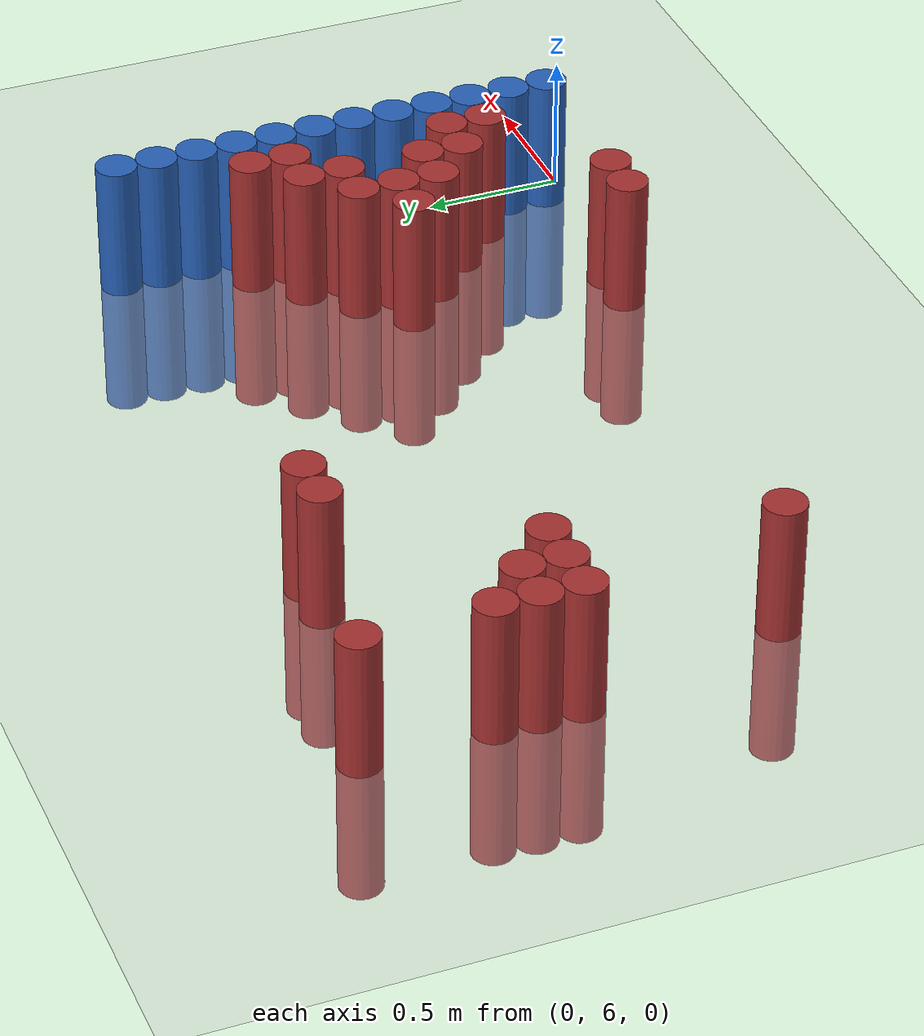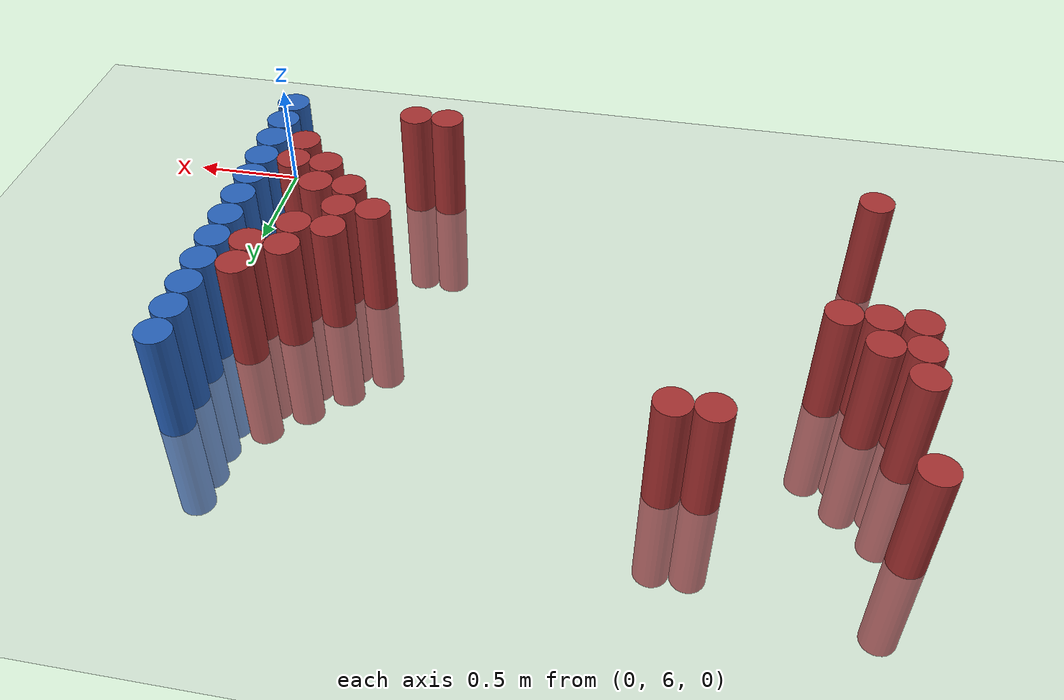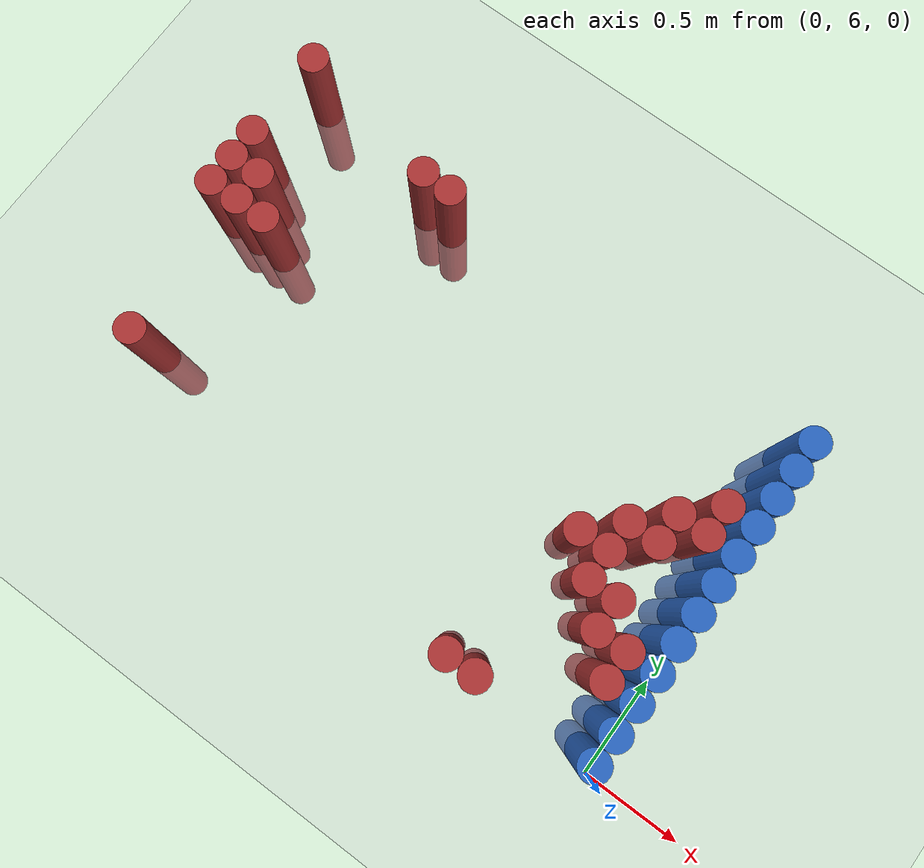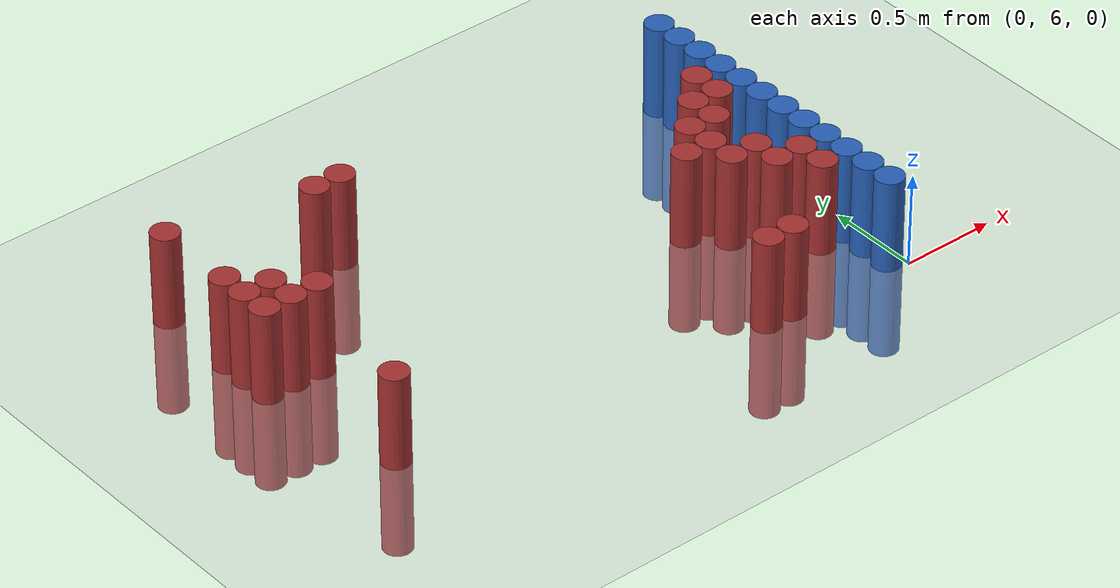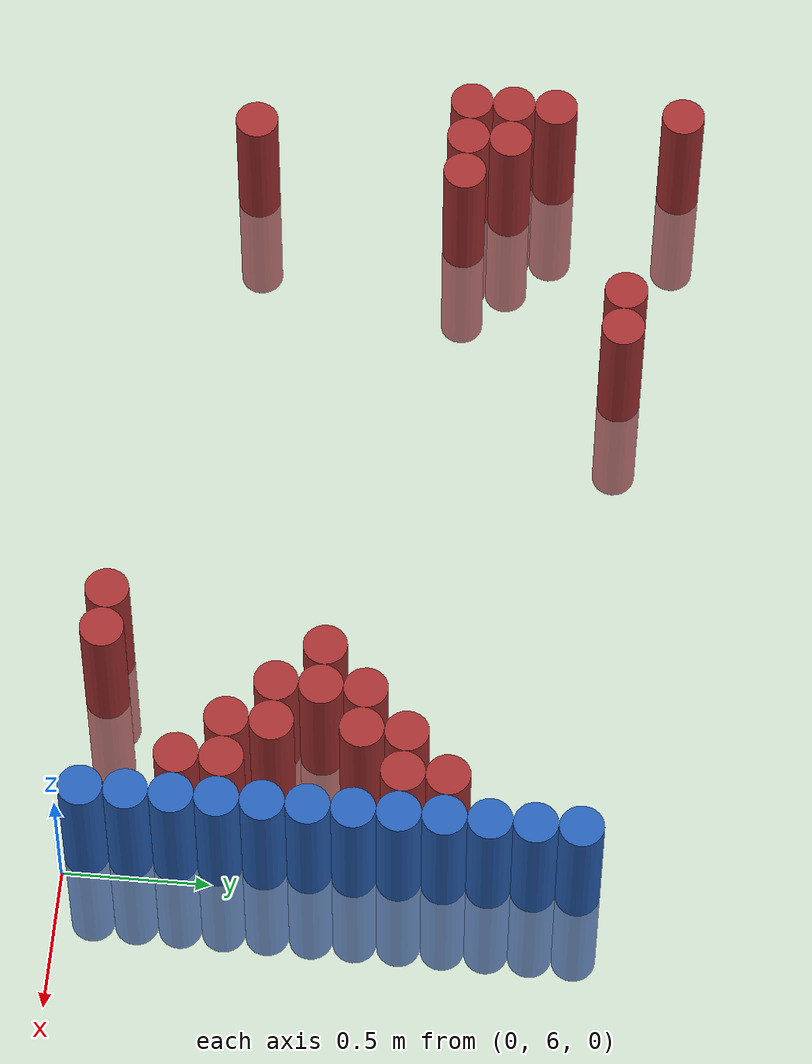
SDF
<sdf version="1.6">
 <world name="default">
  <model name="ground_plane">
   <static>1</static>
   <link name="link">
    <collision name="collision">
     <geometry><plane><normal>0 0 1</normal><size>100 100</size></plane></geometry>
     <surface><friction><ode><mu>100</mu><mu2>50</mu2></ode></friction></surface>
    </collision>
    <visual name="visual">
     <cast_shadows>0</cast_shadows>
     <geometry><plane><normal>0 0 1</normal><size>100 100</size></plane></geometry>
     <material>
      <script><uri>file://media/materials/scripts/gazebo.material</uri><name>Gazebo/Grey</name></script>
     </material>
    </visual>
   </link>
  </model>
  <model name="unit_cylinder_199">
   <static>1</static>
   <pose>-2.925000 7.125000 0.000000 0.000000 0.000000 0.000000</pose>
   <link name="link">
    <inertial>
     <mass>1</mass>
     <inertia><ixx>0.145833</ixx><ixy>0</ixy><ixz>0</ixz><iyy>0.145833</iyy><iyz>0</iyz><izz>0.125</izz></inertia>
    </inertial>
    <collision name="collision">
     <geometry><cylinder><radius>0.075000</radius><length>1</length></cylinder></geometry>
    </collision>
    <visual name="visual">
     <geometry><cylinder><radius>0.075000</radius><length>1</length></cylinder></geometry>
     <material>
      <ambient>0.648000 0.192000 0.192000 1</ambient>
      <diffuse>0.648000 0.192000 0.192000 1</diffuse>
     </material>
     <material>
      <script><name>Gazebo/Grey</name><uri>file://media/materials/scripts/gazebo.material</uri></script>
     </material>
    </visual>
    <sensor name="sensor_contact" type="contact"><contact><collision>collision</collision></contact></sensor>
   </link>
   <plugin filename="gz-sim-touchplugin-system" name="gz::sim::systems::TouchPlugin">
    <target>robot</target>
    <namespace>robot</namespace>
    <time>0.001</time>
    <enabled>true</enabled>
   </plugin>
  </model>
  <model name="unit_cylinder_200">
   <static>1</static>
   <pose>-2.925000 7.275000 0.000000 0.000000 0.000000 0.000000</pose>
   <link name="link">
    <inertial>
     <mass>1</mass>
     <inertia><ixx>0.145833</ixx><ixy>0</ixy><ixz>0</ixz><iyy>0.145833</iyy><iyz>0</iyz><izz>0.125</izz></inertia>
    </inertial>
    <collision name="collision">
     <geometry><cylinder><radius>0.075000</radius><length>1</length></cylinder></geometry>
    </collision>
    <visual name="visual">
     <geometry><cylinder><radius>0.075000</radius><length>1</length></cylinder></geometry>
     <material>
      <ambient>0.648000 0.192000 0.192000 1</ambient>
      <diffuse>0.648000 0.192000 0.192000 1</diffuse>
     </material>
     <material>
      <script><name>Gazebo/Grey</name><uri>file://media/materials/scripts/gazebo.material</uri></script>
     </material>
    </visual>
    <sensor name="sensor_contact" type="contact"><contact><collision>collision</collision></contact></sensor>
   </link>
   <plugin filename="gz-sim-touchplugin-system" name="gz::sim::systems::TouchPlugin">
    <target>robot</target>
    <namespace>robot</namespace>
    <time>0.001</time>
    <enabled>true</enabled>
   </plugin>
  </model>
  <model name="unit_cylinder_201">
   <static>1</static>
   <pose>-2.925000 7.425000 0.000000 0.000000 0.000000 0.000000</pose>
   <link name="link">
    <inertial>
     <mass>1</mass>
     <inertia><ixx>0.145833</ixx><ixy>0</ixy><ixz>0</ixz><iyy>0.145833</iyy><iyz>0</iyz><izz>0.125</izz></inertia>
    </inertial>
    <collision name="collision">
     <geometry><cylinder><radius>0.075000</radius><length>1</length></cylinder></geometry>
    </collision>
    <visual name="visual">
     <geometry><cylinder><radius>0.075000</radius><length>1</length></cylinder></geometry>
     <material>
      <ambient>0.648000 0.192000 0.192000 1</ambient>
      <diffuse>0.648000 0.192000 0.192000 1</diffuse>
     </material>
     <material>
      <script><name>Gazebo/Grey</name><uri>file://media/materials/scripts/gazebo.material</uri></script>
     </material>
    </visual>
    <sensor name="sensor_contact" type="contact"><contact><collision>collision</collision></contact></sensor>
   </link>
   <plugin filename="gz-sim-touchplugin-system" name="gz::sim::systems::TouchPlugin">
    <target>robot</target>
    <namespace>robot</namespace>
    <time>0.001</time>
    <enabled>true</enabled>
   </plugin>
  </model>
  <model name="unit_cylinder_202">
   <static>1</static>
   <pose>-2.925000 7.875000 0.000000 0.000000 0.000000 0.000000</pose>
   <link name="link">
    <inertial>
     <mass>1</mass>
     <inertia><ixx>0.145833</ixx><ixy>0</ixy><ixz>0</ixz><iyy>0.145833</iyy><iyz>0</iyz><izz>0.125</izz></inertia>
    </inertial>
    <collision name="collision">
     <geometry><cylinder><radius>0.075000</radius><length>1</length></cylinder></geometry>
    </collision>
    <visual name="visual">
     <geometry><cylinder><radius>0.075000</radius><length>1</length></cylinder></geometry>
     <material>
      <ambient>0.648000 0.192000 0.192000 1</ambient>
      <diffuse>0.648000 0.192000 0.192000 1</diffuse>
     </material>
     <material>
      <script><name>Gazebo/Grey</name><uri>file://media/materials/scripts/gazebo.material</uri></script>
     </material>
    </visual>
    <sensor name="sensor_contact" type="contact"><contact><collision>collision</collision></contact></sensor>
   </link>
   <plugin filename="gz-sim-touchplugin-system" name="gz::sim::systems::TouchPlugin">
    <target>robot</target>
    <namespace>robot</namespace>
    <time>0.001</time>
    <enabled>true</enabled>
   </plugin>
  </model>
  <model name="unit_cylinder_205">
   <static>1</static>
   <pose>-2.775000 6.375000 0.000000 0.000000 0.000000 0.000000</pose>
   <link name="link">
    <inertial>
     <mass>1</mass>
     <inertia><ixx>0.145833</ixx><ixy>0</ixy><ixz>0</ixz><iyy>0.145833</iyy><iyz>0</iyz><izz>0.125</izz></inertia>
    </inertial>
    <collision name="collision">
     <geometry><cylinder><radius>0.075000</radius><length>1</length></cylinder></geometry>
    </collision>
    <visual name="visual">
     <geometry><cylinder><radius>0.075000</radius><length>1</length></cylinder></geometry>
     <material>
      <ambient>0.648000 0.192000 0.192000 1</ambient>
      <diffuse>0.648000 0.192000 0.192000 1</diffuse>
     </material>
     <material>
      <script><name>Gazebo/Grey</name><uri>file://media/materials/scripts/gazebo.material</uri></script>
     </material>
    </visual>
    <sensor name="sensor_contact" type="contact"><contact><collision>collision</collision></contact></sensor>
   </link>
   <plugin filename="gz-sim-touchplugin-system" name="gz::sim::systems::TouchPlugin">
    <target>robot</target>
    <namespace>robot</namespace>
    <time>0.001</time>
    <enabled>true</enabled>
   </plugin>
  </model>
  <model name="unit_cylinder_206">
   <static>1</static>
   <pose>-2.775000 7.125000 0.000000 0.000000 0.000000 0.000000</pose>
   <link name="link">
    <inertial>
     <mass>1</mass>
     <inertia><ixx>0.145833</ixx><ixy>0</ixy><ixz>0</ixz><iyy>0.145833</iyy><iyz>0</iyz><izz>0.125</izz></inertia>
    </inertial>
    <collision name="collision">
     <geometry><cylinder><radius>0.075000</radius><length>1</length></cylinder></geometry>
    </collision>
    <visual name="visual">
     <geometry><cylinder><radius>0.075000</radius><length>1</length></cylinder></geometry>
     <material>
      <ambient>0.648000 0.192000 0.192000 1</ambient>
      <diffuse>0.648000 0.192000 0.192000 1</diffuse>
     </material>
     <material>
      <script><name>Gazebo/Grey</name><uri>file://media/materials/scripts/gazebo.material</uri></script>
     </material>
    </visual>
    <sensor name="sensor_contact" type="contact"><contact><collision>collision</collision></contact></sensor>
   </link>
   <plugin filename="gz-sim-touchplugin-system" name="gz::sim::systems::TouchPlugin">
    <target>robot</target>
    <namespace>robot</namespace>
    <time>0.001</time>
    <enabled>true</enabled>
   </plugin>
  </model>
  <model name="unit_cylinder_207">
   <static>1</static>
   <pose>-2.775000 7.275000 0.000000 0.000000 0.000000 0.000000</pose>
   <link name="link">
    <inertial>
     <mass>1</mass>
     <inertia><ixx>0.145833</ixx><ixy>0</ixy><ixz>0</ixz><iyy>0.145833</iyy><iyz>0</iyz><izz>0.125</izz></inertia>
    </inertial>
    <collision name="collision">
     <geometry><cylinder><radius>0.075000</radius><length>1</length></cylinder></geometry>
    </collision>
    <visual name="visual">
     <geometry><cylinder><radius>0.075000</radius><length>1</length></cylinder></geometry>
     <material>
      <ambient>0.648000 0.192000 0.192000 1</ambient>
      <diffuse>0.648000 0.192000 0.192000 1</diffuse>
     </material>
     <material>
      <script><name>Gazebo/Grey</name><uri>file://media/materials/scripts/gazebo.material</uri></script>
     </material>
    </visual>
    <sensor name="sensor_contact" type="contact"><contact><collision>collision</collision></contact></sensor>
   </link>
   <plugin filename="gz-sim-touchplugin-system" name="gz::sim::systems::TouchPlugin">
    <target>robot</target>
    <namespace>robot</namespace>
    <time>0.001</time>
    <enabled>true</enabled>
   </plugin>
  </model>
  <model name="unit_cylinder_213">
   <static>1</static>
   <pose>-2.625000 7.125000 0.000000 0.000000 0.000000 0.000000</pose>
   <link name="link">
    <inertial>
     <mass>1</mass>
     <inertia><ixx>0.145833</ixx><ixy>0</ixy><ixz>0</ixz><iyy>0.145833</iyy><iyz>0</iyz><izz>0.125</izz></inertia>
    </inertial>
    <collision name="collision">
     <geometry><cylinder><radius>0.075000</radius><length>1</length></cylinder></geometry>
    </collision>
    <visual name="visual">
     <geometry><cylinder><radius>0.075000</radius><length>1</length></cylinder></geometry>
     <material>
      <ambient>0.648000 0.192000 0.192000 1</ambient>
      <diffuse>0.648000 0.192000 0.192000 1</diffuse>
     </material>
     <material>
      <script><name>Gazebo/Grey</name><uri>file://media/materials/scripts/gazebo.material</uri></script>
     </material>
    </visual>
    <sensor name="sensor_contact" type="contact"><contact><collision>collision</collision></contact></sensor>
   </link>
   <plugin filename="gz-sim-touchplugin-system" name="gz::sim::systems::TouchPlugin">
    <target>robot</target>
    <namespace>robot</namespace>
    <time>0.001</time>
    <enabled>true</enabled>
   </plugin>
  </model>
  <model name="unit_cylinder_224">
   <static>1</static>
   <pose>-2.175000 7.725000 0.000000 0.000000 0.000000 0.000000</pose>
   <link name="link">
    <inertial>
     <mass>1</mass>
     <inertia><ixx>0.145833</ixx><ixy>0</ixy><ixz>0</ixz><iyy>0.145833</iyy><iyz>0</iyz><izz>0.125</izz></inertia>
    </inertial>
    <collision name="collision">
     <geometry><cylinder><radius>0.075000</radius><length>1</length></cylinder></geometry>
    </collision>
    <visual name="visual">
     <geometry><cylinder><radius>0.075000</radius><length>1</length></cylinder></geometry>
     <material>
      <ambient>0.648000 0.192000 0.192000 1</ambient>
      <diffuse>0.648000 0.192000 0.192000 1</diffuse>
     </material>
     <material>
      <script><name>Gazebo/Grey</name><uri>file://media/materials/scripts/gazebo.material</uri></script>
     </material>
    </visual>
    <sensor name="sensor_contact" type="contact"><contact><collision>collision</collision></contact></sensor>
   </link>
   <plugin filename="gz-sim-touchplugin-system" name="gz::sim::systems::TouchPlugin">
    <target>robot</target>
    <namespace>robot</namespace>
    <time>0.001</time>
    <enabled>true</enabled>
   </plugin>
  </model>
  <model name="unit_cylinder_226">
   <static>1</static>
   <pose>-2.025000 7.725000 0.000000 0.000000 0.000000 0.000000</pose>
   <link name="link">
    <inertial>
     <mass>1</mass>
     <inertia><ixx>0.145833</ixx><ixy>0</ixy><ixz>0</ixz><iyy>0.145833</iyy><iyz>0</iyz><izz>0.125</izz></inertia>
    </inertial>
    <collision name="collision">
     <geometry><cylinder><radius>0.075000</radius><length>1</length></cylinder></geometry>
    </collision>
    <visual name="visual">
     <geometry><cylinder><radius>0.075000</radius><length>1</length></cylinder></geometry>
     <material>
      <ambient>0.648000 0.192000 0.192000 1</ambient>
      <diffuse>0.648000 0.192000 0.192000 1</diffuse>
     </material>
     <material>
      <script><name>Gazebo/Grey</name><uri>file://media/materials/scripts/gazebo.material</uri></script>
     </material>
    </visual>
    <sensor name="sensor_contact" type="contact"><contact><collision>collision</collision></contact></sensor>
   </link>
   <plugin filename="gz-sim-touchplugin-system" name="gz::sim::systems::TouchPlugin">
    <target>robot</target>
    <namespace>robot</namespace>
    <time>0.001</time>
    <enabled>true</enabled>
   </plugin>
  </model>
  <model name="unit_cylinder_237">
   <static>1</static>
   <pose>-0.825000 6.075000 0.000000 0.000000 0.000000 0.000000</pose>
   <link name="link">
    <inertial>
     <mass>1</mass>
     <inertia><ixx>0.145833</ixx><ixy>0</ixy><ixz>0</ixz><iyy>0.145833</iyy><iyz>0</iyz><izz>0.125</izz></inertia>
    </inertial>
    <collision name="collision">
     <geometry><cylinder><radius>0.075000</radius><length>1</length></cylinder></geometry>
    </collision>
    <visual name="visual">
     <geometry><cylinder><radius>0.075000</radius><length>1</length></cylinder></geometry>
     <material>
      <ambient>0.648000 0.192000 0.192000 1</ambient>
      <diffuse>0.648000 0.192000 0.192000 1</diffuse>
     </material>
     <material>
      <script><name>Gazebo/Grey</name><uri>file://media/materials/scripts/gazebo.material</uri></script>
     </material>
    </visual>
    <sensor name="sensor_contact" type="contact"><contact><collision>collision</collision></contact></sensor>
   </link>
   <plugin filename="gz-sim-touchplugin-system" name="gz::sim::systems::TouchPlugin">
    <target>robot</target>
    <namespace>robot</namespace>
    <time>0.001</time>
    <enabled>true</enabled>
   </plugin>
  </model>
  <model name="unit_cylinder_240">
   <static>1</static>
   <pose>-0.675000 6.075000 0.000000 0.000000 0.000000 0.000000</pose>
   <link name="link">
    <inertial>
     <mass>1</mass>
     <inertia><ixx>0.145833</ixx><ixy>0</ixy><ixz>0</ixz><iyy>0.145833</iyy><iyz>0</iyz><izz>0.125</izz></inertia>
    </inertial>
    <collision name="collision">
     <geometry><cylinder><radius>0.075000</radius><length>1</length></cylinder></geometry>
    </collision>
    <visual name="visual">
     <geometry><cylinder><radius>0.075000</radius><length>1</length></cylinder></geometry>
     <material>
      <ambient>0.648000 0.192000 0.192000 1</ambient>
      <diffuse>0.648000 0.192000 0.192000 1</diffuse>
     </material>
     <material>
      <script><name>Gazebo/Grey</name><uri>file://media/materials/scripts/gazebo.material</uri></script>
     </material>
    </visual>
    <sensor name="sensor_contact" type="contact"><contact><collision>collision</collision></contact></sensor>
   </link>
   <plugin filename="gz-sim-touchplugin-system" name="gz::sim::systems::TouchPlugin">
    <target>robot</target>
    <namespace>robot</namespace>
    <time>0.001</time>
    <enabled>true</enabled>
   </plugin>
  </model>
  <model name="unit_cylinder_241">
   <static>1</static>
   <pose>-0.675000 6.825000 0.000000 0.000000 0.000000 0.000000</pose>
   <link name="link">
    <inertial>
     <mass>1</mass>
     <inertia><ixx>0.145833</ixx><ixy>0</ixy><ixz>0</ixz><iyy>0.145833</iyy><iyz>0</iyz><izz>0.125</izz></inertia>
    </inertial>
    <collision name="collision">
     <geometry><cylinder><radius>0.075000</radius><length>1</length></cylinder></geometry>
    </collision>
    <visual name="visual">
     <geometry><cylinder><radius>0.075000</radius><length>1</length></cylinder></geometry>
     <material>
      <ambient>0.648000 0.192000 0.192000 1</ambient>
      <diffuse>0.648000 0.192000 0.192000 1</diffuse>
     </material>
     <material>
      <script><name>Gazebo/Grey</name><uri>file://media/materials/scripts/gazebo.material</uri></script>
     </material>
    </visual>
    <sensor name="sensor_contact" type="contact"><contact><collision>collision</collision></contact></sensor>
   </link>
   <plugin filename="gz-sim-touchplugin-system" name="gz::sim::systems::TouchPlugin">
    <target>robot</target>
    <namespace>robot</namespace>
    <time>0.001</time>
    <enabled>true</enabled>
   </plugin>
  </model>
  <model name="unit_cylinder_244">
   <static>1</static>
   <pose>-0.525000 6.675000 0.000000 0.000000 0.000000 0.000000</pose>
   <link name="link">
    <inertial>
     <mass>1</mass>
     <inertia><ixx>0.145833</ixx><ixy>0</ixy><ixz>0</ixz><iyy>0.145833</iyy><iyz>0</iyz><izz>0.125</izz></inertia>
    </inertial>
    <collision name="collision">
     <geometry><cylinder><radius>0.075000</radius><length>1</length></cylinder></geometry>
    </collision>
    <visual name="visual">
     <geometry><cylinder><radius>0.075000</radius><length>1</length></cylinder></geometry>
     <material>
      <ambient>0.648000 0.192000 0.192000 1</ambient>
      <diffuse>0.648000 0.192000 0.192000 1</diffuse>
     </material>
     <material>
      <script><name>Gazebo/Grey</name><uri>file://media/materials/scripts/gazebo.material</uri></script>
     </material>
    </visual>
    <sensor name="sensor_contact" type="contact"><contact><collision>collision</collision></contact></sensor>
   </link>
   <plugin filename="gz-sim-touchplugin-system" name="gz::sim::systems::TouchPlugin">
    <target>robot</target>
    <namespace>robot</namespace>
    <time>0.001</time>
    <enabled>true</enabled>
   </plugin>
  </model>
  <model name="unit_cylinder_245">
   <static>1</static>
   <pose>-0.525000 6.825000 0.000000 0.000000 0.000000 0.000000</pose>
   <link name="link">
    <inertial>
     <mass>1</mass>
     <inertia><ixx>0.145833</ixx><ixy>0</ixy><ixz>0</ixz><iyy>0.145833</iyy><iyz>0</iyz><izz>0.125</izz></inertia>
    </inertial>
    <collision name="collision">
     <geometry><cylinder><radius>0.075000</radius><length>1</length></cylinder></geometry>
    </collision>
    <visual name="visual">
     <geometry><cylinder><radius>0.075000</radius><length>1</length></cylinder></geometry>
     <material>
      <ambient>0.648000 0.192000 0.192000 1</ambient>
      <diffuse>0.648000 0.192000 0.192000 1</diffuse>
     </material>
     <material>
      <script><name>Gazebo/Grey</name><uri>file://media/materials/scripts/gazebo.material</uri></script>
     </material>
    </visual>
    <sensor name="sensor_contact" type="contact"><contact><collision>collision</collision></contact></sensor>
   </link>
   <plugin filename="gz-sim-touchplugin-system" name="gz::sim::systems::TouchPlugin">
    <target>robot</target>
    <namespace>robot</namespace>
    <time>0.001</time>
    <enabled>true</enabled>
   </plugin>
  </model>
  <model name="unit_cylinder_246">
   <static>1</static>
   <pose>-0.525000 6.975000 0.000000 0.000000 0.000000 0.000000</pose>
   <link name="link">
    <inertial>
     <mass>1</mass>
     <inertia><ixx>0.145833</ixx><ixy>0</ixy><ixz>0</ixz><iyy>0.145833</iyy><iyz>0</iyz><izz>0.125</izz></inertia>
    </inertial>
    <collision name="collision">
     <geometry><cylinder><radius>0.075000</radius><length>1</length></cylinder></geometry>
    </collision>
    <visual name="visual">
     <geometry><cylinder><radius>0.075000</radius><length>1</length></cylinder></geometry>
     <material>
      <ambient>0.648000 0.192000 0.192000 1</ambient>
      <diffuse>0.648000 0.192000 0.192000 1</diffuse>
     </material>
     <material>
      <script><name>Gazebo/Grey</name><uri>file://media/materials/scripts/gazebo.material</uri></script>
     </material>
    </visual>
    <sensor name="sensor_contact" type="contact"><contact><collision>collision</collision></contact></sensor>
   </link>
   <plugin filename="gz-sim-touchplugin-system" name="gz::sim::systems::TouchPlugin">
    <target>robot</target>
    <namespace>robot</namespace>
    <time>0.001</time>
    <enabled>true</enabled>
   </plugin>
  </model>
  <model name="unit_cylinder_248">
   <static>1</static>
   <pose>-0.375000 6.525000 0.000000 0.000000 0.000000 0.000000</pose>
   <link name="link">
    <inertial>
     <mass>1</mass>
     <inertia><ixx>0.145833</ixx><ixy>0</ixy><ixz>0</ixz><iyy>0.145833</iyy><iyz>0</iyz><izz>0.125</izz></inertia>
    </inertial>
    <collision name="collision">
     <geometry><cylinder><radius>0.075000</radius><length>1</length></cylinder></geometry>
    </collision>
    <visual name="visual">
     <geometry><cylinder><radius>0.075000</radius><length>1</length></cylinder></geometry>
     <material>
      <ambient>0.648000 0.192000 0.192000 1</ambient>
      <diffuse>0.648000 0.192000 0.192000 1</diffuse>
     </material>
     <material>
      <script><name>Gazebo/Grey</name><uri>file://media/materials/scripts/gazebo.material</uri></script>
     </material>
    </visual>
    <sensor name="sensor_contact" type="contact"><contact><collision>collision</collision></contact></sensor>
   </link>
   <plugin filename="gz-sim-touchplugin-system" name="gz::sim::systems::TouchPlugin">
    <target>robot</target>
    <namespace>robot</namespace>
    <time>0.001</time>
    <enabled>true</enabled>
   </plugin>
  </model>
  <model name="unit_cylinder_249">
   <static>1</static>
   <pose>-0.375000 6.675000 0.000000 0.000000 0.000000 0.000000</pose>
   <link name="link">
    <inertial>
     <mass>1</mass>
     <inertia><ixx>0.145833</ixx><ixy>0</ixy><ixz>0</ixz><iyy>0.145833</iyy><iyz>0</iyz><izz>0.125</izz></inertia>
    </inertial>
    <collision name="collision">
     <geometry><cylinder><radius>0.075000</radius><length>1</length></cylinder></geometry>
    </collision>
    <visual name="visual">
     <geometry><cylinder><radius>0.075000</radius><length>1</length></cylinder></geometry>
     <material>
      <ambient>0.648000 0.192000 0.192000 1</ambient>
      <diffuse>0.648000 0.192000 0.192000 1</diffuse>
     </material>
     <material>
      <script><name>Gazebo/Grey</name><uri>file://media/materials/scripts/gazebo.material</uri></script>
     </material>
    </visual>
    <sensor name="sensor_contact" type="contact"><contact><collision>collision</collision></contact></sensor>
   </link>
   <plugin filename="gz-sim-touchplugin-system" name="gz::sim::systems::TouchPlugin">
    <target>robot</target>
    <namespace>robot</namespace>
    <time>0.001</time>
    <enabled>true</enabled>
   </plugin>
  </model>
  <model name="unit_cylinder_250">
   <static>1</static>
   <pose>-0.375000 6.975000 0.000000 0.000000 0.000000 0.000000</pose>
   <link name="link">
    <inertial>
     <mass>1</mass>
     <inertia><ixx>0.145833</ixx><ixy>0</ixy><ixz>0</ixz><iyy>0.145833</iyy><iyz>0</iyz><izz>0.125</izz></inertia>
    </inertial>
    <collision name="collision">
     <geometry><cylinder><radius>0.075000</radius><length>1</length></cylinder></geometry>
    </collision>
    <visual name="visual">
     <geometry><cylinder><radius>0.075000</radius><length>1</length></cylinder></geometry>
     <material>
      <ambient>0.648000 0.192000 0.192000 1</ambient>
      <diffuse>0.648000 0.192000 0.192000 1</diffuse>
     </material>
     <material>
      <script><name>Gazebo/Grey</name><uri>file://media/materials/scripts/gazebo.material</uri></script>
     </material>
    </visual>
    <sensor name="sensor_contact" type="contact"><contact><collision>collision</collision></contact></sensor>
   </link>
   <plugin filename="gz-sim-touchplugin-system" name="gz::sim::systems::TouchPlugin">
    <target>robot</target>
    <namespace>robot</namespace>
    <time>0.001</time>
    <enabled>true</enabled>
   </plugin>
  </model>
  <model name="unit_cylinder_251">
   <static>1</static>
   <pose>-0.375000 7.125000 0.000000 0.000000 0.000000 0.000000</pose>
   <link name="link">
    <inertial>
     <mass>1</mass>
     <inertia><ixx>0.145833</ixx><ixy>0</ixy><ixz>0</ixz><iyy>0.145833</iyy><iyz>0</iyz><izz>0.125</izz></inertia>
    </inertial>
    <collision name="collision">
     <geometry><cylinder><radius>0.075000</radius><length>1</length></cylinder></geometry>
    </collision>
    <visual name="visual">
     <geometry><cylinder><radius>0.075000</radius><length>1</length></cylinder></geometry>
     <material>
      <ambient>0.648000 0.192000 0.192000 1</ambient>
      <diffuse>0.648000 0.192000 0.192000 1</diffuse>
     </material>
     <material>
      <script><name>Gazebo/Grey</name><uri>file://media/materials/scripts/gazebo.material</uri></script>
     </material>
    </visual>
    <sensor name="sensor_contact" type="contact"><contact><collision>collision</collision></contact></sensor>
   </link>
   <plugin filename="gz-sim-touchplugin-system" name="gz::sim::systems::TouchPlugin">
    <target>robot</target>
    <namespace>robot</namespace>
    <time>0.001</time>
    <enabled>true</enabled>
   </plugin>
  </model>
  <model name="unit_cylinder_252">
   <static>1</static>
   <pose>-0.225000 6.375000 0.000000 0.000000 0.000000 0.000000</pose>
   <link name="link">
    <inertial>
     <mass>1</mass>
     <inertia><ixx>0.145833</ixx><ixy>0</ixy><ixz>0</ixz><iyy>0.145833</iyy><iyz>0</iyz><izz>0.125</izz></inertia>
    </inertial>
    <collision name="collision">
     <geometry><cylinder><radius>0.075000</radius><length>1</length></cylinder></geometry>
    </collision>
    <visual name="visual">
     <geometry><cylinder><radius>0.075000</radius><length>1</length></cylinder></geometry>
     <material>
      <ambient>0.648000 0.192000 0.192000 1</ambient>
      <diffuse>0.648000 0.192000 0.192000 1</diffuse>
     </material>
     <material>
      <script><name>Gazebo/Grey</name><uri>file://media/materials/scripts/gazebo.material</uri></script>
     </material>
    </visual>
    <sensor name="sensor_contact" type="contact"><contact><collision>collision</collision></contact></sensor>
   </link>
   <plugin filename="gz-sim-touchplugin-system" name="gz::sim::systems::TouchPlugin">
    <target>robot</target>
    <namespace>robot</namespace>
    <time>0.001</time>
    <enabled>true</enabled>
   </plugin>
  </model>
  <model name="unit_cylinder_253">
   <static>1</static>
   <pose>-0.225000 6.525000 0.000000 0.000000 0.000000 0.000000</pose>
   <link name="link">
    <inertial>
     <mass>1</mass>
     <inertia><ixx>0.145833</ixx><ixy>0</ixy><ixz>0</ixz><iyy>0.145833</iyy><iyz>0</iyz><izz>0.125</izz></inertia>
    </inertial>
    <collision name="collision">
     <geometry><cylinder><radius>0.075000</radius><length>1</length></cylinder></geometry>
    </collision>
    <visual name="visual">
     <geometry><cylinder><radius>0.075000</radius><length>1</length></cylinder></geometry>
     <material>
      <ambient>0.648000 0.192000 0.192000 1</ambient>
      <diffuse>0.648000 0.192000 0.192000 1</diffuse>
     </material>
     <material>
      <script><name>Gazebo/Grey</name><uri>file://media/materials/scripts/gazebo.material</uri></script>
     </material>
    </visual>
    <sensor name="sensor_contact" type="contact"><contact><collision>collision</collision></contact></sensor>
   </link>
   <plugin filename="gz-sim-touchplugin-system" name="gz::sim::systems::TouchPlugin">
    <target>robot</target>
    <namespace>robot</namespace>
    <time>0.001</time>
    <enabled>true</enabled>
   </plugin>
  </model>
  <model name="unit_cylinder_254">
   <static>1</static>
   <pose>-0.225000 7.125000 0.000000 0.000000 0.000000 0.000000</pose>
   <link name="link">
    <inertial>
     <mass>1</mass>
     <inertia><ixx>0.145833</ixx><ixy>0</ixy><ixz>0</ixz><iyy>0.145833</iyy><iyz>0</iyz><izz>0.125</izz></inertia>
    </inertial>
    <collision name="collision">
     <geometry><cylinder><radius>0.075000</radius><length>1</length></cylinder></geometry>
    </collision>
    <visual name="visual">
     <geometry><cylinder><radius>0.075000</radius><length>1</length></cylinder></geometry>
     <material>
      <ambient>0.648000 0.192000 0.192000 1</ambient>
      <diffuse>0.648000 0.192000 0.192000 1</diffuse>
     </material>
     <material>
      <script><name>Gazebo/Grey</name><uri>file://media/materials/scripts/gazebo.material</uri></script>
     </material>
    </visual>
    <sensor name="sensor_contact" type="contact"><contact><collision>collision</collision></contact></sensor>
   </link>
   <plugin filename="gz-sim-touchplugin-system" name="gz::sim::systems::TouchPlugin">
    <target>robot</target>
    <namespace>robot</namespace>
    <time>0.001</time>
    <enabled>true</enabled>
   </plugin>
  </model>
  <model name="unit_cylinder_255">
   <static>1</static>
   <pose>-0.225000 7.275000 0.000000 0.000000 0.000000 0.000000</pose>
   <link name="link">
    <inertial>
     <mass>1</mass>
     <inertia><ixx>0.145833</ixx><ixy>0</ixy><ixz>0</ixz><iyy>0.145833</iyy><iyz>0</iyz><izz>0.125</izz></inertia>
    </inertial>
    <collision name="collision">
     <geometry><cylinder><radius>0.075000</radius><length>1</length></cylinder></geometry>
    </collision>
    <visual name="visual">
     <geometry><cylinder><radius>0.075000</radius><length>1</length></cylinder></geometry>
     <material>
      <ambient>0.648000 0.192000 0.192000 1</ambient>
      <diffuse>0.648000 0.192000 0.192000 1</diffuse>
     </material>
     <material>
      <script><name>Gazebo/Grey</name><uri>file://media/materials/scripts/gazebo.material</uri></script>
     </material>
    </visual>
    <sensor name="sensor_contact" type="contact"><contact><collision>collision</collision></contact></sensor>
   </link>
   <plugin filename="gz-sim-touchplugin-system" name="gz::sim::systems::TouchPlugin">
    <target>robot</target>
    <namespace>robot</namespace>
    <time>0.001</time>
    <enabled>true</enabled>
   </plugin>
  </model>
  <model name="unit_cylinder_267">
   <static>1</static>
   <pose>-0.075000 6.075000 0.000000 0.000000 0.000000 0.000000</pose>
   <link name="link">
    <inertial>
     <mass>1</mass>
     <inertia><ixx>0.145833</ixx><ixy>0</ixy><ixz>0</ixz><iyy>0.145833</iyy><iyz>0</iyz><izz>0.125</izz></inertia>
    </inertial>
    <collision name="collision">
     <geometry><cylinder><radius>0.075000</radius><length>1</length></cylinder></geometry>
    </collision>
    <visual name="visual">
     <geometry><cylinder><radius>0.075000</radius><length>1</length></cylinder></geometry>
     <material>
      <ambient>0.152000 0.379000 0.720000 1</ambient>
      <diffuse>0.152000 0.379000 0.720000 1</diffuse>
     </material>
     <material>
      <script><name>Gazebo/Grey</name><uri>file://media/materials/scripts/gazebo.material</uri></script>
     </material>
    </visual>
    <sensor name="sensor_contact" type="contact"><contact><collision>collision</collision></contact></sensor>
   </link>
   <plugin filename="gz-sim-touchplugin-system" name="gz::sim::systems::TouchPlugin">
    <target>robot</target>
    <namespace>robot</namespace>
    <time>0.001</time>
    <enabled>true</enabled>
   </plugin>
  </model>
  <model name="unit_cylinder_268">
   <static>1</static>
   <pose>-0.075000 6.225000 0.000000 0.000000 0.000000 0.000000</pose>
   <link name="link">
    <inertial>
     <mass>1</mass>
     <inertia><ixx>0.145833</ixx><ixy>0</ixy><ixz>0</ixz><iyy>0.145833</iyy><iyz>0</iyz><izz>0.125</izz></inertia>
    </inertial>
    <collision name="collision">
     <geometry><cylinder><radius>0.075000</radius><length>1</length></cylinder></geometry>
    </collision>
    <visual name="visual">
     <geometry><cylinder><radius>0.075000</radius><length>1</length></cylinder></geometry>
     <material>
      <ambient>0.152000 0.379000 0.720000 1</ambient>
      <diffuse>0.152000 0.379000 0.720000 1</diffuse>
     </material>
     <material>
      <script><name>Gazebo/Grey</name><uri>file://media/materials/scripts/gazebo.material</uri></script>
     </material>
    </visual>
    <sensor name="sensor_contact" type="contact"><contact><collision>collision</collision></contact></sensor>
   </link>
   <plugin filename="gz-sim-touchplugin-system" name="gz::sim::systems::TouchPlugin">
    <target>robot</target>
    <namespace>robot</namespace>
    <time>0.001</time>
    <enabled>true</enabled>
   </plugin>
  </model>
  <model name="unit_cylinder_269">
   <static>1</static>
   <pose>-0.075000 6.375000 0.000000 0.000000 0.000000 0.000000</pose>
   <link name="link">
    <inertial>
     <mass>1</mass>
     <inertia><ixx>0.145833</ixx><ixy>0</ixy><ixz>0</ixz><iyy>0.145833</iyy><iyz>0</iyz><izz>0.125</izz></inertia>
    </inertial>
    <collision name="collision">
     <geometry><cylinder><radius>0.075000</radius><length>1</length></cylinder></geometry>
    </collision>
    <visual name="visual">
     <geometry><cylinder><radius>0.075000</radius><length>1</length></cylinder></geometry>
     <material>
      <ambient>0.152000 0.379000 0.720000 1</ambient>
      <diffuse>0.152000 0.379000 0.720000 1</diffuse>
     </material>
     <material>
      <script><name>Gazebo/Grey</name><uri>file://media/materials/scripts/gazebo.material</uri></script>
     </material>
    </visual>
    <sensor name="sensor_contact" type="contact"><contact><collision>collision</collision></contact></sensor>
   </link>
   <plugin filename="gz-sim-touchplugin-system" name="gz::sim::systems::TouchPlugin">
    <target>robot</target>
    <namespace>robot</namespace>
    <time>0.001</time>
    <enabled>true</enabled>
   </plugin>
  </model>
  <model name="unit_cylinder_270">
   <static>1</static>
   <pose>-0.075000 6.525000 0.000000 0.000000 0.000000 0.000000</pose>
   <link name="link">
    <inertial>
     <mass>1</mass>
     <inertia><ixx>0.145833</ixx><ixy>0</ixy><ixz>0</ixz><iyy>0.145833</iyy><iyz>0</iyz><izz>0.125</izz></inertia>
    </inertial>
    <collision name="collision">
     <geometry><cylinder><radius>0.075000</radius><length>1</length></cylinder></geometry>
    </collision>
    <visual name="visual">
     <geometry><cylinder><radius>0.075000</radius><length>1</length></cylinder></geometry>
     <material>
      <ambient>0.152000 0.379000 0.720000 1</ambient>
      <diffuse>0.152000 0.379000 0.720000 1</diffuse>
     </material>
     <material>
      <script><name>Gazebo/Grey</name><uri>file://media/materials/scripts/gazebo.material</uri></script>
     </material>
    </visual>
    <sensor name="sensor_contact" type="contact"><contact><collision>collision</collision></contact></sensor>
   </link>
   <plugin filename="gz-sim-touchplugin-system" name="gz::sim::systems::TouchPlugin">
    <target>robot</target>
    <namespace>robot</namespace>
    <time>0.001</time>
    <enabled>true</enabled>
   </plugin>
  </model>
  <model name="unit_cylinder_271">
   <static>1</static>
   <pose>-0.075000 6.675000 0.000000 0.000000 0.000000 0.000000</pose>
   <link name="link">
    <inertial>
     <mass>1</mass>
     <inertia><ixx>0.145833</ixx><ixy>0</ixy><ixz>0</ixz><iyy>0.145833</iyy><iyz>0</iyz><izz>0.125</izz></inertia>
    </inertial>
    <collision name="collision">
     <geometry><cylinder><radius>0.075000</radius><length>1</length></cylinder></geometry>
    </collision>
    <visual name="visual">
     <geometry><cylinder><radius>0.075000</radius><length>1</length></cylinder></geometry>
     <material>
      <ambient>0.152000 0.379000 0.720000 1</ambient>
      <diffuse>0.152000 0.379000 0.720000 1</diffuse>
     </material>
     <material>
      <script><name>Gazebo/Grey</name><uri>file://media/materials/scripts/gazebo.material</uri></script>
     </material>
    </visual>
    <sensor name="sensor_contact" type="contact"><contact><collision>collision</collision></contact></sensor>
   </link>
   <plugin filename="gz-sim-touchplugin-system" name="gz::sim::systems::TouchPlugin">
    <target>robot</target>
    <namespace>robot</namespace>
    <time>0.001</time>
    <enabled>true</enabled>
   </plugin>
  </model>
  <model name="unit_cylinder_272">
   <static>1</static>
   <pose>-0.075000 6.825000 0.000000 0.000000 0.000000 0.000000</pose>
   <link name="link">
    <inertial>
     <mass>1</mass>
     <inertia><ixx>0.145833</ixx><ixy>0</ixy><ixz>0</ixz><iyy>0.145833</iyy><iyz>0</iyz><izz>0.125</izz></inertia>
    </inertial>
    <collision name="collision">
     <geometry><cylinder><radius>0.075000</radius><length>1</length></cylinder></geometry>
    </collision>
    <visual name="visual">
     <geometry><cylinder><radius>0.075000</radius><length>1</length></cylinder></geometry>
     <material>
      <ambient>0.152000 0.379000 0.720000 1</ambient>
      <diffuse>0.152000 0.379000 0.720000 1</diffuse>
     </material>
     <material>
      <script><name>Gazebo/Grey</name><uri>file://media/materials/scripts/gazebo.material</uri></script>
     </material>
    </visual>
    <sensor name="sensor_contact" type="contact"><contact><collision>collision</collision></contact></sensor>
   </link>
   <plugin filename="gz-sim-touchplugin-system" name="gz::sim::systems::TouchPlugin">
    <target>robot</target>
    <namespace>robot</namespace>
    <time>0.001</time>
    <enabled>true</enabled>
   </plugin>
  </model>
  <model name="unit_cylinder_273">
   <static>1</static>
   <pose>-0.075000 6.975000 0.000000 0.000000 0.000000 0.000000</pose>
   <link name="link">
    <inertial>
     <mass>1</mass>
     <inertia><ixx>0.145833</ixx><ixy>0</ixy><ixz>0</ixz><iyy>0.145833</iyy><iyz>0</iyz><izz>0.125</izz></inertia>
    </inertial>
    <collision name="collision">
     <geometry><cylinder><radius>0.075000</radius><length>1</length></cylinder></geometry>
    </collision>
    <visual name="visual">
     <geometry><cylinder><radius>0.075000</radius><length>1</length></cylinder></geometry>
     <material>
      <ambient>0.152000 0.379000 0.720000 1</ambient>
      <diffuse>0.152000 0.379000 0.720000 1</diffuse>
     </material>
     <material>
      <script><name>Gazebo/Grey</name><uri>file://media/materials/scripts/gazebo.material</uri></script>
     </material>
    </visual>
    <sensor name="sensor_contact" type="contact"><contact><collision>collision</collision></contact></sensor>
   </link>
   <plugin filename="gz-sim-touchplugin-system" name="gz::sim::systems::TouchPlugin">
    <target>robot</target>
    <namespace>robot</namespace>
    <time>0.001</time>
    <enabled>true</enabled>
   </plugin>
  </model>
  <model name="unit_cylinder_274">
   <static>1</static>
   <pose>-0.075000 7.125000 0.000000 0.000000 0.000000 0.000000</pose>
   <link name="link">
    <inertial>
     <mass>1</mass>
     <inertia><ixx>0.145833</ixx><ixy>0</ixy><ixz>0</ixz><iyy>0.145833</iyy><iyz>0</iyz><izz>0.125</izz></inertia>
    </inertial>
    <collision name="collision">
     <geometry><cylinder><radius>0.075000</radius><length>1</length></cylinder></geometry>
    </collision>
    <visual name="visual">
     <geometry><cylinder><radius>0.075000</radius><length>1</length></cylinder></geometry>
     <material>
      <ambient>0.152000 0.379000 0.720000 1</ambient>
      <diffuse>0.152000 0.379000 0.720000 1</diffuse>
     </material>
     <material>
      <script><name>Gazebo/Grey</name><uri>file://media/materials/scripts/gazebo.material</uri></script>
     </material>
    </visual>
    <sensor name="sensor_contact" type="contact"><contact><collision>collision</collision></contact></sensor>
   </link>
   <plugin filename="gz-sim-touchplugin-system" name="gz::sim::systems::TouchPlugin">
    <target>robot</target>
    <namespace>robot</namespace>
    <time>0.001</time>
    <enabled>true</enabled>
   </plugin>
  </model>
  <model name="unit_cylinder_275">
   <static>1</static>
   <pose>-0.075000 7.275000 0.000000 0.000000 0.000000 0.000000</pose>
   <link name="link">
    <inertial>
     <mass>1</mass>
     <inertia><ixx>0.145833</ixx><ixy>0</ixy><ixz>0</ixz><iyy>0.145833</iyy><iyz>0</iyz><izz>0.125</izz></inertia>
    </inertial>
    <collision name="collision">
     <geometry><cylinder><radius>0.075000</radius><length>1</length></cylinder></geometry>
    </collision>
    <visual name="visual">
     <geometry><cylinder><radius>0.075000</radius><length>1</length></cylinder></geometry>
     <material>
      <ambient>0.152000 0.379000 0.720000 1</ambient>
      <diffuse>0.152000 0.379000 0.720000 1</diffuse>
     </material>
     <material>
      <script><name>Gazebo/Grey</name><uri>file://media/materials/scripts/gazebo.material</uri></script>
     </material>
    </visual>
    <sensor name="sensor_contact" type="contact"><contact><collision>collision</collision></contact></sensor>
   </link>
   <plugin filename="gz-sim-touchplugin-system" name="gz::sim::systems::TouchPlugin">
    <target>robot</target>
    <namespace>robot</namespace>
    <time>0.001</time>
    <enabled>true</enabled>
   </plugin>
  </model>
  <model name="unit_cylinder_276">
   <static>1</static>
   <pose>-0.075000 7.425000 0.000000 0.000000 0.000000 0.000000</pose>
   <link name="link">
    <inertial>
     <mass>1</mass>
     <inertia><ixx>0.145833</ixx><ixy>0</ixy><ixz>0</ixz><iyy>0.145833</iyy><iyz>0</iyz><izz>0.125</izz></inertia>
    </inertial>
    <collision name="collision">
     <geometry><cylinder><radius>0.075000</radius><length>1</length></cylinder></geometry>
    </collision>
    <visual name="visual">
     <geometry><cylinder><radius>0.075000</radius><length>1</length></cylinder></geometry>
     <material>
      <ambient>0.152000 0.379000 0.720000 1</ambient>
      <diffuse>0.152000 0.379000 0.720000 1</diffuse>
     </material>
     <material>
      <script><name>Gazebo/Grey</name><uri>file://media/materials/scripts/gazebo.material</uri></script>
     </material>
    </visual>
    <sensor name="sensor_contact" type="contact"><contact><collision>collision</collision></contact></sensor>
   </link>
   <plugin filename="gz-sim-touchplugin-system" name="gz::sim::systems::TouchPlugin">
    <target>robot</target>
    <namespace>robot</namespace>
    <time>0.001</time>
    <enabled>true</enabled>
   </plugin>
  </model>
  <model name="unit_cylinder_277">
   <static>1</static>
   <pose>-0.075000 7.575000 0.000000 0.000000 0.000000 0.000000</pose>
   <link name="link">
    <inertial>
     <mass>1</mass>
     <inertia><ixx>0.145833</ixx><ixy>0</ixy><ixz>0</ixz><iyy>0.145833</iyy><iyz>0</iyz><izz>0.125</izz></inertia>
    </inertial>
    <collision name="collision">
     <geometry><cylinder><radius>0.075000</radius><length>1</length></cylinder></geometry>
    </collision>
    <visual name="visual">
     <geometry><cylinder><radius>0.075000</radius><length>1</length></cylinder></geometry>
     <material>
      <ambient>0.152000 0.379000 0.720000 1</ambient>
      <diffuse>0.152000 0.379000 0.720000 1</diffuse>
     </material>
     <material>
      <script><name>Gazebo/Grey</name><uri>file://media/materials/scripts/gazebo.material</uri></script>
     </material>
    </visual>
    <sensor name="sensor_contact" type="contact"><contact><collision>collision</collision></contact></sensor>
   </link>
   <plugin filename="gz-sim-touchplugin-system" name="gz::sim::systems::TouchPlugin">
    <target>robot</target>
    <namespace>robot</namespace>
    <time>0.001</time>
    <enabled>true</enabled>
   </plugin>
  </model>
  <model name="unit_cylinder_278">
   <static>1</static>
   <pose>-0.075000 7.725000 0.000000 0.000000 0.000000 0.000000</pose>
   <link name="link">
    <inertial>
     <mass>1</mass>
     <inertia><ixx>0.145833</ixx><ixy>0</ixy><ixz>0</ixz><iyy>0.145833</iyy><iyz>0</iyz><izz>0.125</izz></inertia>
    </inertial>
    <collision name="collision">
     <geometry><cylinder><radius>0.075000</radius><length>1</length></cylinder></geometry>
    </collision>
    <visual name="visual">
     <geometry><cylinder><radius>0.075000</radius><length>1</length></cylinder></geometry>
     <material>
      <ambient>0.152000 0.379000 0.720000 1</ambient>
      <diffuse>0.152000 0.379000 0.720000 1</diffuse>
     </material>
     <material>
      <script><name>Gazebo/Grey</name><uri>file://media/materials/scripts/gazebo.material</uri></script>
     </material>
    </visual>
    <sensor name="sensor_contact" type="contact"><contact><collision>collision</collision></contact></sensor>
   </link>
   <plugin filename="gz-sim-touchplugin-system" name="gz::sim::systems::TouchPlugin">
    <target>robot</target>
    <namespace>robot</namespace>
    <time>0.001</time>
    <enabled>true</enabled>
   </plugin>
  </model>
 </world>
</sdf>
